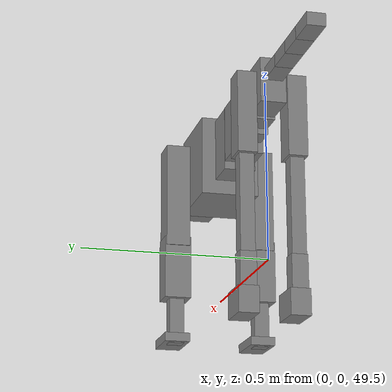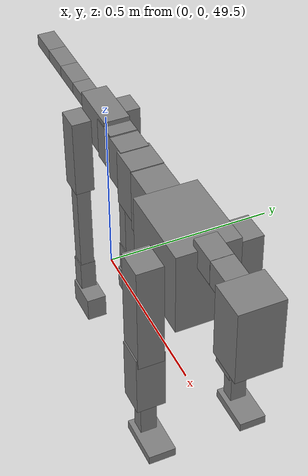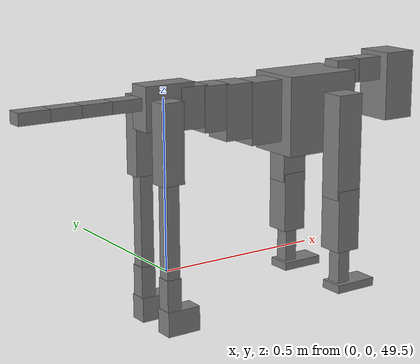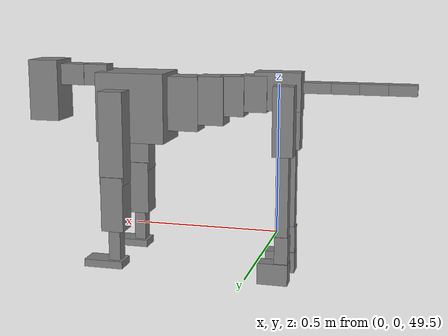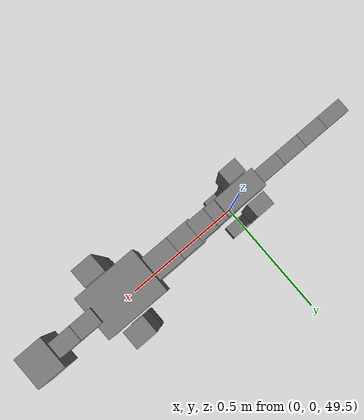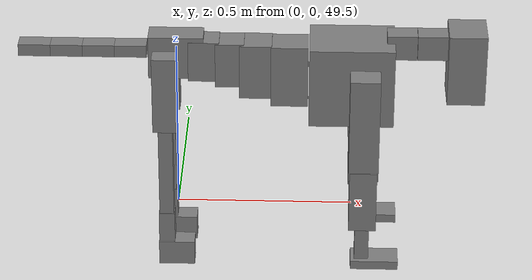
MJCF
<mujoco model="dog">

    <default>
        <joint armature="0.02" stiffness="1" damping="0.2" limited="true"/>
        <geom condim="3" friction="1 0.05 0.05" margin="0.01"/>
        <motor ctrllimited="true" ctrlrange="-1.0 1.0" forcelimited="true" gear="50"/>
    </default>

    <compiler inertiafromgeom="true" angle="radian"/>

    <option timestep="0.016" iterations="50" tolerance="1e-10" solver="Newton" jacobian="dense" cone="pyramidal"/>

    <size nconmax="20000" njmax="60000" nstack="5000000"/>
    <visual>
        <map force="0.1" zfar="30"/>
        <rgba haze="0.15 0.25 0.35 1"/>
        <quality shadowsize="2048"/>
        <global offwidth="800" offheight="800"/>
    </visual>

    <asset>
        <texture type="skybox" builtin="gradient" rgb1="0.3 0.5 0.7" rgb2="0 0 0" width="512" height="512"/>
        <texture name="texplane" type="2d" builtin="checker" rgb1=".2 .3 .4" rgb2=".1 0.15 0.2" width="512" height="512"
                 mark="cross" markrgb=".8 .8 .8"/>
        <texture name="texgeom" type="cube" builtin="flat" mark="cross" width="127" height="1278" rgb1="0.8 0.6 0.4"
                 rgb2="0.8 0.6 0.4" markrgb="1 1 1" random="0.01"/>

        <material name="matplane" reflectance="0.3" texture="texplane" texrepeat="1 1" texuniform="true"/>
        <material name="matgeom" texture="texgeom" texuniform="true" rgba="0.8 0.6 .4 1"/>
    </asset>

    <worldbody>
        <geom name="floor" pos="0 0 0" size="0 0 .25" type="plane" material="matplane" condim="3"/>

        <light directional="false" diffuse=".2 .2 .2" specular="0 0 0" pos="0 0 5" dir="0 0 -1" castshadow="false"/>
        <light mode="targetbodycom" target="torso" directional="false" diffuse=".8 .8 .8" specular="0.3 0.3 0.3"
               pos="0 0 4.0" dir="0 0 -1"/>

        <body name="root" pos="0 0 50">
            <freejoint name="root_1"/>
            <geom type="box" pos="0 0 -0.02" size="0.0774  0.0358  0.063" density="2030"/>

            <body name="spine1" pos="0.054 0 0">
                <joint name="spine1_y" axis="0 1 0" range="0 0.7" limited="true"/>
                <geom type="box" pos="0.02375 0 -0.03" size="0.04375  0.0375  0.05985" density="2030"/>

                <body name="spine2" pos="0.0612 0 0">
                    <joint name="spine2_y" axis="0 1 0" range="-0.15 0.15" limited="true"/>
                    <geom type="box" pos="0.03555  0  -0.04" size="0.04055  0.039  0.06615" density="2030"/>

                    <body name="spine3" pos="0.0730 0 0">
                        <joint name="spine3_y" axis="0 1 0" range="-0.15 0.15" limited="true"/>
                        <geom type="box" pos="0.03555  0  -0.057" size="0.04555  0.0445  0.081" density="2030"/>

                        <body name="spine4" pos="0.0780 0 0">
                            <joint name="spine4_y" axis="0 1 0" range="-0.15 0.15" limited="true"/>
                            <geom type="box" pos="0.05265  0  -0.07" size="0.05265  0.045  0.09135" density="2030"/>

                            <body name="torso" pos="0.1082 0 0">
                                <joint name="torso_y" axis="0 1 0" range="-0.15 0.15" limited="true"/>
                                <geom type="box" pos="0.11925  0  -0.085" size="0.11925  0.085  0.11745"
                                      density="2030"/>

                                <body name="neck1" pos="0.2160  0   0.0180">
                                    <joint name="neck1_y" axis="0 1 0" range="-1.2  -1" limited="true"/>
                                    <geom type="box" pos="0.0423  0  0" size="0.0423  0.03  0.036" density="2325"/>

                                    <body name="neck2" pos="0.0853  0  0">
                                        <joint name="neck2_y" axis="0 1 0" range="0.1  0" limited="true"/>
                                        <geom type="box" pos="0.0423  0  0" size="0.0423  0.03  0.036" density="2325"/>

                                        <body name="head" pos="0.0853  0  0">
                                            <joint name="head_y" axis="0 1 0" range="-0.3  -0.2" limited="true"/>
                                            <geom type="box" pos="0.0531  0  -0.055" size="0.0531  0.06  0.1044"
                                                  density="4030"/>

                                        </body>
                                    </body>
                                </body>

                                <body name="front_shoulder" pos="0.156  0   -0.0480">
                                    <joint name="front_shoulder_y" axis="0 1 0" range="-1 1.5" limited="true"/>
                                    <geom type="box" pos="0 0.13 -0.1293" size="0.0420  0.0359  0.1560" density="1158"/>
                                    <geom type="box" pos="0 -0.13 -0.1293" size="0.0420  0.0359  0.1560"
                                          density="1158"/>

                                    <body name="front_elbow" pos="0  0  -0.2587">
                                        <joint name="front_elbow_y" axis="0 1 0" range="-2 0" limited="true"/>
                                        <geom type="box" pos="0 0.13 -0.0929" size="0.0387  0.0395  0.0929"
                                              density="1081"/>
                                        <geom type="box" pos="0 -0.13 -0.0929" size="0.0387  0.0395  0.0929"
                                              density="1081"/>

                                        <body name="front_wrist" pos="0  0  -0.1857">
                                            <joint name="front_wrist_y" axis="0 1 0" range="-0.2 0" limited="true"/>
                                            <geom type="box" pos="0 0.13 -0.0597" size="0.0202  0.0224  0.0729"
                                                  density="1664"/>
                                            <geom type="box" pos="0 -0.13 -0.0597" size="0.0202  0.0224  0.0729"
                                                  density="1664"/>

                                            <body name="front_finger_end" pos="0  0  -0.1195">
                                                <joint name="front_finger_y" axis="0 1 0" range="-0.4 1"
                                                       limited="true"/>
                                                <geom type="box" pos="0.0371  0.13  0.0022"
                                                      size="0.0679  0.0371  0.0128" density="1515"/>
                                                <geom type="box" pos="0.0371  -0.13  0.0022"
                                                      size="0.0679  0.0371  0.0128" density="1515"/>

                                            </body>

                                        </body>
                                    </body>
                                </body>

                            </body>
                        </body>
                    </body>
                </body>
            </body>

            <body name="back_hip" pos="-0.03 0 -0.018">
                <joint name="back_hip_y" axis="0 1 0" range="-1.5 0.3" limited="true"/>
                <geom type="box" pos="0 0.07 -0.0918" size="0.0345  0.0270  0.1146" density="1154"/>
                <geom type="box" pos="0 -0.07 -0.0918" size="0.0345  0.0270  0.1146" density="1154"/>

                <body name="back_knee" pos="0  0  -0.1837">
                    <joint name="back_knee_y" axis="0 1 0" range="0 2.8" limited="true"/>
                    <geom type="box" pos="0 0.07 -0.1513" size="0.0204  0.0201  0.1668" density="1227"/>
                    <geom type="box" pos="0 -0.07 -0.1513" size="0.0204  0.0201  0.1668" density="1227"/>

                    <body name="back_ankle" pos="0  0  -0.3026">
                        <joint name="back_ankle_y" axis="0 1 0" range="-2.2 0" limited="true"/>
                        <geom type="box" pos="0 0.07 -0.0477" size="0.0226  0.0226  0.0589" density="1284"/>
                        <geom type="box" pos="0 -0.07 -0.0477" size="0.0226  0.0226  0.0589" density="1284"/>

                        <body name="back_toe_end" pos="0  0  -0.0953">
                            <joint name="back_toe_y" axis="0 1 0" range="-0.4 1" limited="true"/>
                            <geom type="box" pos="0.0280  0.07  -0.0215" size="0.0513  0.0280  0.0365" density="1515"/>
                            <geom type="box" pos="0.0280  -0.07  -0.0215" size="0.0513  0.0280  0.0365" density="1515"/>

                        </body>
                    </body>
                </body>
            </body>

            <body name="tail1" pos="-0.074 0 -0.006">
                <joint name="tail1_y" axis="0 1 0" range="-0.2 0.2" limited="true"/>
                <geom type="box" pos="-0.0536  0  0" size="0.045  0.025  0.0175" density="1587"/>

                <body name="tail2" pos="-0.09 0 0">
                    <joint name="tail2_y" axis="0 1 0" range="-0.2 0.2" limited="true"/>
                    <geom type="box" pos="-0.0536  0  0" size="0.045  0.025  0.0175" density="1587"/>

                    <body name="tail3" pos="-0.09 0 0">
                        <joint name="tail3_y" axis="0 1 0" range="-0.2 0.2" limited="true"/>
                        <geom type="box" pos="-0.0536  0  0" size="0.045  0.025  0.0175" density="1587"/>

                        <body name="tail4" pos="-0.09 0 0">
                            <joint name="tail4_y" axis="0 1 0" range="-0.2 0.2" limited="true"/>
                            <geom type="box" pos="-0.0536  0  0" size="0.045  0.025  0.0175" density="1587"/>

                        </body>
                    </body>
                </body>
            </body>
        </body>
    </worldbody>

    <actuator>
        <motor joint="spine1_y" forcerange="-150 150     "/>
        <motor joint="spine2_y" forcerange="-150 150     "/>
        <motor joint="spine3_y" forcerange="-150 150     "/>
        <motor joint="spine4_y" forcerange="-150 150     "/>
        <motor joint="torso_y" forcerange="-150 150     "/>
        <motor joint="neck1_y" forcerange="-100 100       "/>
        <motor joint="neck2_y" forcerange="-100 100       "/>
        <motor joint="head_y" forcerange="-150 150       "/>
        <motor joint="front_shoulder_y" forcerange="-170.37 169.07"/>
        <motor joint="front_elbow_y" forcerange="-191.99 195.41"/>
        <motor joint="front_wrist_y" forcerange="-109.33 70.08"/>
        <motor joint="front_finger_y" forcerange="-62.41 95.22"/>
        <motor joint="back_hip_y" forcerange="-282.92 277.61"/>
        <motor joint="back_knee_y" forcerange="-221.45 270.83"/>
        <motor joint="back_angle_y" forcerange="-162.68 99.42"/>
        <motor joint="back_toe_y" forcerange="-104.18 39.88"/>
        <motor joint="tail1_y" forcerange="-50 50     "/>
        <motor joint="tail2_y" forcerange="-50 50     "/>
        <motor joint="tail3_y" forcerange="-50 50     "/>
        <motor joint="tail4_y" forcerange="-50 50     "/>
    </actuator>
</mujoco>
